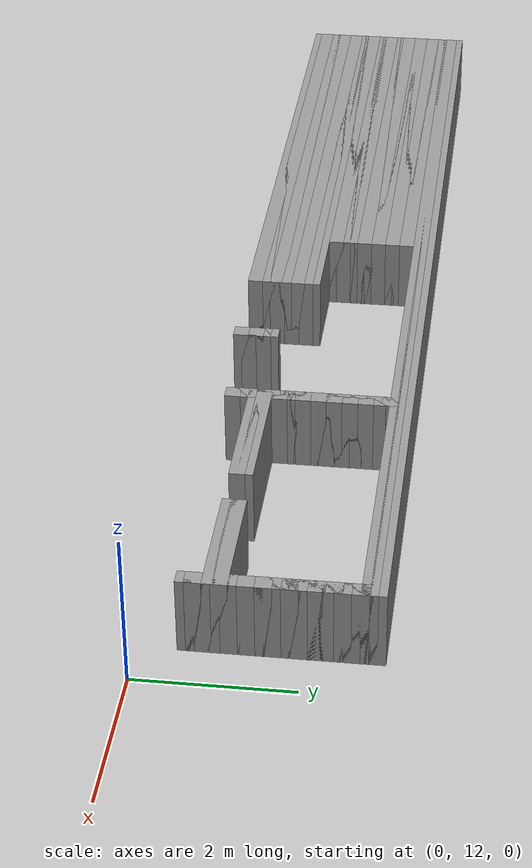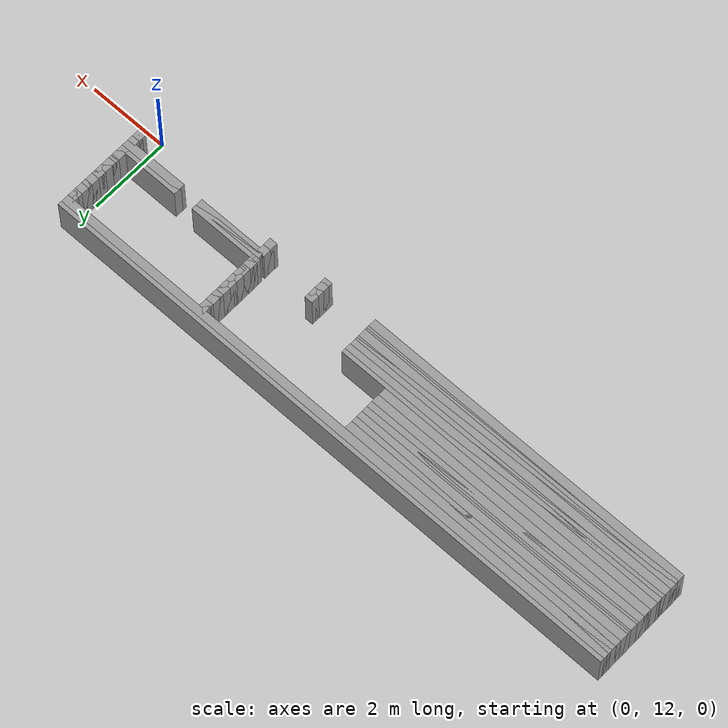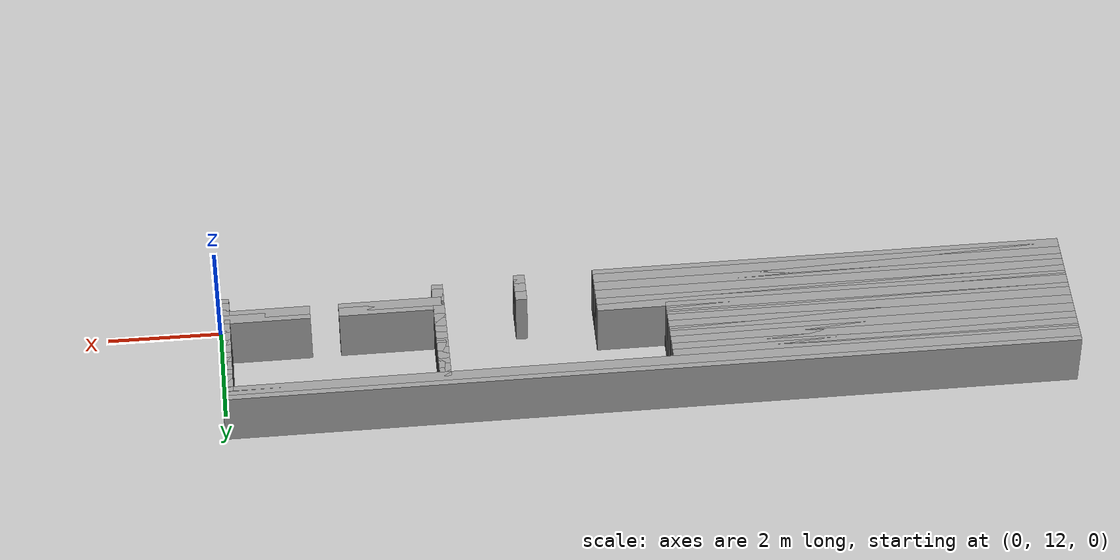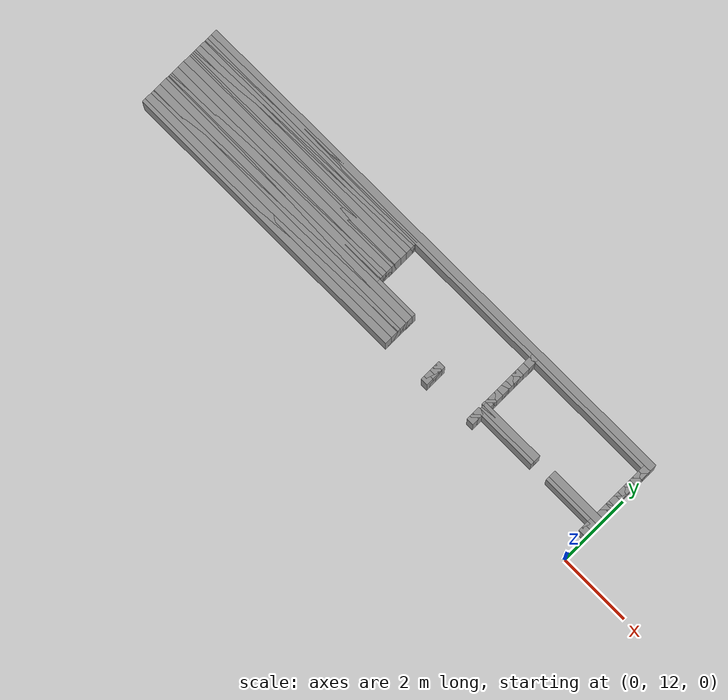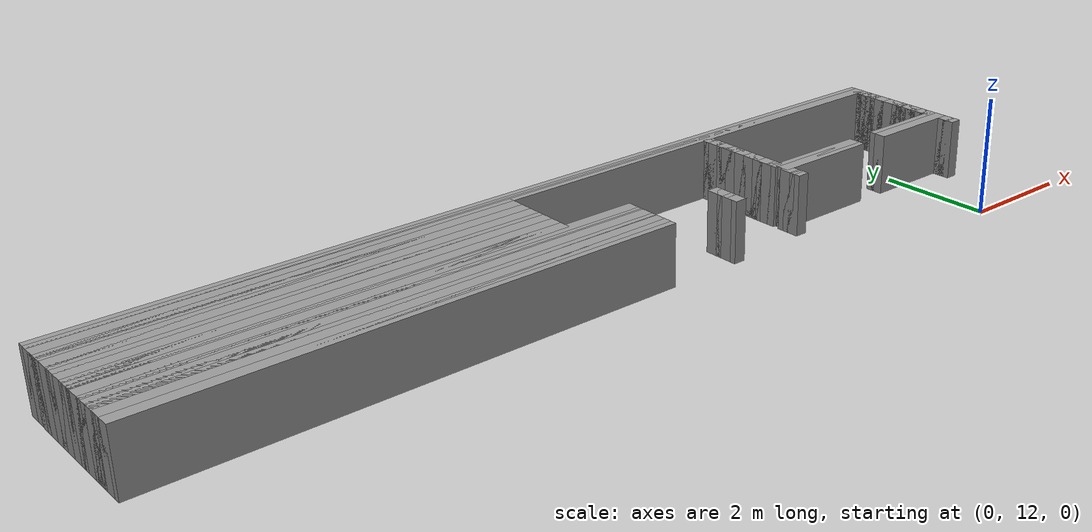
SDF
<sdf version="1.6">
 <world name="GridMap">
  <model name="GridMap">
   <link name="Wall_(53.0,126.0)">
    <collision name="Wall_(53.0,126.0)_Collision">
     <geometry><box><size>0.2 0.2 1.0</size></box></geometry>
     <pose>-5.300000000000001 12.600000000000001 0.5 0 -0 0</pose>
    </collision>
    <visual name="Wall_(53.0,126.0)_Visual">
     <geometry><box><size>0.2 0.2 1.0</size></box></geometry>
     <pose>-5.300000000000001 12.600000000000001 0.5 0 -0 0</pose>
     <material>
      <script><uri>file://media/materials/scripts/gazebo.material</uri><name>Gazebo/Grey</name></script>
      <ambient>1 1 1 1</ambient>
     </material>
     <meta><layer>0</layer></meta>
    </visual>
    <pose>0 0 0.5 0 -0 0</pose>
   </link>
   <link name="Wall_(107.5,126.0)">
    <collision name="Wall_(107.5,126.0)_Collision">
     <geometry><box><size>8.3 0.2 1.0</size></box></geometry>
     <pose>-10.75 12.600000000000001 0.5 0 -0 0</pose>
    </collision>
    <visual name="Wall_(107.5,126.0)_Visual">
     <geometry><box><size>8.3 0.2 1.0</size></box></geometry>
     <pose>-10.75 12.600000000000001 0.5 0 -0 0</pose>
     <material>
      <script><uri>file://media/materials/scripts/gazebo.material</uri><name>Gazebo/Grey</name></script>
      <ambient>1 1 1 1</ambient>
     </material>
     <meta><layer>0</layer></meta>
    </visual>
    <pose>0 0 0.5 0 -0 0</pose>
   </link>
   <link name="Wall_(1.0,127.0)">
    <collision name="Wall_(1.0,127.0)_Collision">
     <geometry><box><size>0.2 0.2 1.0</size></box></geometry>
     <pose>-0.1 12.700000000000001 0.5 0 -0 0</pose>
    </collision>
    <visual name="Wall_(1.0,127.0)_Visual">
     <geometry><box><size>0.2 0.2 1.0</size></box></geometry>
     <pose>-0.1 12.700000000000001 0.5 0 -0 0</pose>
     <material>
      <script><uri>file://media/materials/scripts/gazebo.material</uri><name>Gazebo/Grey</name></script>
      <ambient>1 1 1 1</ambient>
     </material>
     <meta><layer>0</layer></meta>
    </visual>
    <pose>0 0 0.5 0 -0 0</pose>
   </link>
   <link name="Wall_(38.5,127.0)">
    <collision name="Wall_(38.5,127.0)_Collision">
     <geometry><box><size>0.2 0.2 1.0</size></box></geometry>
     <pose>-3.85 12.700000000000001 0.5 0 -0 0</pose>
    </collision>
    <visual name="Wall_(38.5,127.0)_Visual">
     <geometry><box><size>0.2 0.2 1.0</size></box></geometry>
     <pose>-3.85 12.700000000000001 0.5 0 -0 0</pose>
     <material>
      <script><uri>file://media/materials/scripts/gazebo.material</uri><name>Gazebo/Grey</name></script>
      <ambient>1 1 1 1</ambient>
     </material>
     <meta><layer>0</layer></meta>
    </visual>
    <pose>0 0 0.5 0 -0 0</pose>
   </link>
   <link name="Wall_(53.0,127.0)">
    <collision name="Wall_(53.0,127.0)_Collision">
     <geometry><box><size>0.2 0.2 1.0</size></box></geometry>
     <pose>-5.300000000000001 12.700000000000001 0.5 0 -0 0</pose>
    </collision>
    <visual name="Wall_(53.0,127.0)_Visual">
     <geometry><box><size>0.2 0.2 1.0</size></box></geometry>
     <pose>-5.300000000000001 12.700000000000001 0.5 0 -0 0</pose>
     <material>
      <script><uri>file://media/materials/scripts/gazebo.material</uri><name>Gazebo/Grey</name></script>
      <ambient>1 1 1 1</ambient>
     </material>
     <meta><layer>0</layer></meta>
    </visual>
    <pose>0 0 0.5 0 -0 0</pose>
   </link>
   <link name="Wall_(107.5,127.0)">
    <collision name="Wall_(107.5,127.0)_Collision">
     <geometry><box><size>8.3 0.2 1.0</size></box></geometry>
     <pose>-10.75 12.700000000000001 0.5 0 -0 0</pose>
    </collision>
    <visual name="Wall_(107.5,127.0)_Visual">
     <geometry><box><size>8.3 0.2 1.0</size></box></geometry>
     <pose>-10.75 12.700000000000001 0.5 0 -0 0</pose>
     <material>
      <script><uri>file://media/materials/scripts/gazebo.material</uri><name>Gazebo/Grey</name></script>
      <ambient>1 1 1 1</ambient>
     </material>
     <meta><layer>0</layer></meta>
    </visual>
    <pose>0 0 0.5 0 -0 0</pose>
   </link>
   <link name="Wall_(1.0,128.0)">
    <collision name="Wall_(1.0,128.0)_Collision">
     <geometry><box><size>0.2 0.2 1.0</size></box></geometry>
     <pose>-0.1 12.8 0.5 0 -0 0</pose>
    </collision>
    <visual name="Wall_(1.0,128.0)_Visual">
     <geometry><box><size>0.2 0.2 1.0</size></box></geometry>
     <pose>-0.1 12.8 0.5 0 -0 0</pose>
     <material>
      <script><uri>file://media/materials/scripts/gazebo.material</uri><name>Gazebo/Grey</name></script>
      <ambient>1 1 1 1</ambient>
     </material>
     <meta><layer>0</layer></meta>
    </visual>
    <pose>0 0 0.5 0 -0 0</pose>
   </link>
   <link name="Wall_(38.5,128.0)">
    <collision name="Wall_(38.5,128.0)_Collision">
     <geometry><box><size>0.2 0.2 1.0</size></box></geometry>
     <pose>-3.85 12.8 0.5 0 -0 0</pose>
    </collision>
    <visual name="Wall_(38.5,128.0)_Visual">
     <geometry><box><size>0.2 0.2 1.0</size></box></geometry>
     <pose>-3.85 12.8 0.5 0 -0 0</pose>
     <material>
      <script><uri>file://media/materials/scripts/gazebo.material</uri><name>Gazebo/Grey</name></script>
      <ambient>1 1 1 1</ambient>
     </material>
     <meta><layer>0</layer></meta>
    </visual>
    <pose>0 0 0.5 0 -0 0</pose>
   </link>
   <link name="Wall_(53.0,128.0)">
    <collision name="Wall_(53.0,128.0)_Collision">
     <geometry><box><size>0.2 0.2 1.0</size></box></geometry>
     <pose>-5.300000000000001 12.8 0.5 0 -0 0</pose>
    </collision>
    <visual name="Wall_(53.0,128.0)_Visual">
     <geometry><box><size>0.2 0.2 1.0</size></box></geometry>
     <pose>-5.300000000000001 12.8 0.5 0 -0 0</pose>
     <material>
      <script><uri>file://media/materials/scripts/gazebo.material</uri><name>Gazebo/Grey</name></script>
      <ambient>1 1 1 1</ambient>
     </material>
     <meta><layer>0</layer></meta>
    </visual>
    <pose>0 0 0.5 0 -0 0</pose>
   </link>
   <link name="Wall_(107.5,128.0)">
    <collision name="Wall_(107.5,128.0)_Collision">
     <geometry><box><size>8.3 0.2 1.0</size></box></geometry>
     <pose>-10.75 12.8 0.5 0 -0 0</pose>
    </collision>
    <visual name="Wall_(107.5,128.0)_Visual">
     <geometry><box><size>8.3 0.2 1.0</size></box></geometry>
     <pose>-10.75 12.8 0.5 0 -0 0</pose>
     <material>
      <script><uri>file://media/materials/scripts/gazebo.material</uri><name>Gazebo/Grey</name></script>
      <ambient>1 1 1 1</ambient>
     </material>
     <meta><layer>0</layer></meta>
    </visual>
    <pose>0 0 0.5 0 -0 0</pose>
   </link>
   <link name="Wall_(1.0,129.0)">
    <collision name="Wall_(1.0,129.0)_Collision">
     <geometry><box><size>0.2 0.2 1.0</size></box></geometry>
     <pose>-0.1 12.9 0.5 0 -0 0</pose>
    </collision>
    <visual name="Wall_(1.0,129.0)_Visual">
     <geometry><box><size>0.2 0.2 1.0</size></box></geometry>
     <pose>-0.1 12.9 0.5 0 -0 0</pose>
     <material>
      <script><uri>file://media/materials/scripts/gazebo.material</uri><name>Gazebo/Grey</name></script>
      <ambient>1 1 1 1</ambient>
     </material>
     <meta><layer>0</layer></meta>
    </visual>
    <pose>0 0 0.5 0 -0 0</pose>
   </link>
   <link name="Wall_(38.5,129.0)">
    <collision name="Wall_(38.5,129.0)_Collision">
     <geometry><box><size>0.2 0.2 1.0</size></box></geometry>
     <pose>-3.85 12.9 0.5 0 -0 0</pose>
    </collision>
    <visual name="Wall_(38.5,129.0)_Visual">
     <geometry><box><size>0.2 0.2 1.0</size></box></geometry>
     <pose>-3.85 12.9 0.5 0 -0 0</pose>
     <material>
      <script><uri>file://media/materials/scripts/gazebo.material</uri><name>Gazebo/Grey</name></script>
      <ambient>1 1 1 1</ambient>
     </material>
     <meta><layer>0</layer></meta>
    </visual>
    <pose>0 0 0.5 0 -0 0</pose>
   </link>
   <link name="Wall_(53.0,129.0)">
    <collision name="Wall_(53.0,129.0)_Collision">
     <geometry><box><size>0.2 0.2 1.0</size></box></geometry>
     <pose>-5.300000000000001 12.9 0.5 0 -0 0</pose>
    </collision>
    <visual name="Wall_(53.0,129.0)_Visual">
     <geometry><box><size>0.2 0.2 1.0</size></box></geometry>
     <pose>-5.300000000000001 12.9 0.5 0 -0 0</pose>
     <material>
      <script><uri>file://media/materials/scripts/gazebo.material</uri><name>Gazebo/Grey</name></script>
      <ambient>1 1 1 1</ambient>
     </material>
     <meta><layer>0</layer></meta>
    </visual>
    <pose>0 0 0.5 0 -0 0</pose>
   </link>
   <link name="Wall_(107.5,129.0)">
    <collision name="Wall_(107.5,129.0)_Collision">
     <geometry><box><size>8.3 0.2 1.0</size></box></geometry>
     <pose>-10.75 12.9 0.5 0 -0 0</pose>
    </collision>
    <visual name="Wall_(107.5,129.0)_Visual">
     <geometry><box><size>8.3 0.2 1.0</size></box></geometry>
     <pose>-10.75 12.9 0.5 0 -0 0</pose>
     <material>
      <script><uri>file://media/materials/scripts/gazebo.material</uri><name>Gazebo/Grey</name></script>
      <ambient>1 1 1 1</ambient>
     </material>
     <meta><layer>0</layer></meta>
    </visual>
    <pose>0 0 0.5 0 -0 0</pose>
   </link>
   <link name="Wall_(8.0,130.0)">
    <collision name="Wall_(8.0,130.0)_Collision">
     <geometry><box><size>1.6 0.2 1.0</size></box></geometry>
     <pose>-0.8 13.0 0.5 0 -0 0</pose>
    </collision>
    <visual name="Wall_(8.0,130.0)_Visual">
     <geometry><box><size>1.6 0.2 1.0</size></box></geometry>
     <pose>-0.8 13.0 0.5 0 -0 0</pose>
     <material>
      <script><uri>file://media/materials/scripts/gazebo.material</uri><name>Gazebo/Grey</name></script>
      <ambient>1 1 1 1</ambient>
     </material>
     <meta><layer>0</layer></meta>
    </visual>
    <pose>0 0 0.5 0 -0 0</pose>
   </link>
   <link name="Wall_(30.0,130.0)">
    <collision name="Wall_(30.0,130.0)_Collision">
     <geometry><box><size>1.8 0.2 1.0</size></box></geometry>
     <pose>-3.0 13.0 0.5 0 -0 0</pose>
    </collision>
    <visual name="Wall_(30.0,130.0)_Visual">
     <geometry><box><size>1.8 0.2 1.0</size></box></geometry>
     <pose>-3.0 13.0 0.5 0 -0 0</pose>
     <material>
      <script><uri>file://media/materials/scripts/gazebo.material</uri><name>Gazebo/Grey</name></script>
      <ambient>1 1 1 1</ambient>
     </material>
     <meta><layer>0</layer></meta>
    </visual>
    <pose>0 0 0.5 0 -0 0</pose>
   </link>
   <link name="Wall_(53.0,130.0)">
    <collision name="Wall_(53.0,130.0)_Collision">
     <geometry><box><size>0.2 0.2 1.0</size></box></geometry>
     <pose>-5.300000000000001 13.0 0.5 0 -0 0</pose>
    </collision>
    <visual name="Wall_(53.0,130.0)_Visual">
     <geometry><box><size>0.2 0.2 1.0</size></box></geometry>
     <pose>-5.300000000000001 13.0 0.5 0 -0 0</pose>
     <material>
      <script><uri>file://media/materials/scripts/gazebo.material</uri><name>Gazebo/Grey</name></script>
      <ambient>1 1 1 1</ambient>
     </material>
     <meta><layer>0</layer></meta>
    </visual>
    <pose>0 0 0.5 0 -0 0</pose>
   </link>
   <link name="Wall_(107.5,130.0)">
    <collision name="Wall_(107.5,130.0)_Collision">
     <geometry><box><size>8.3 0.2 1.0</size></box></geometry>
     <pose>-10.75 13.0 0.5 0 -0 0</pose>
    </collision>
    <visual name="Wall_(107.5,130.0)_Visual">
     <geometry><box><size>8.3 0.2 1.0</size></box></geometry>
     <pose>-10.75 13.0 0.5 0 -0 0</pose>
     <material>
      <script><uri>file://media/materials/scripts/gazebo.material</uri><name>Gazebo/Grey</name></script>
      <ambient>1 1 1 1</ambient>
     </material>
     <meta><layer>0</layer></meta>
    </visual>
    <pose>0 0 0.5 0 -0 0</pose>
   </link>
   <link name="Wall_(8.0,131.0)">
    <collision name="Wall_(8.0,131.0)_Collision">
     <geometry><box><size>1.6 0.2 1.0</size></box></geometry>
     <pose>-0.8 13.100000000000001 0.5 0 -0 0</pose>
    </collision>
    <visual name="Wall_(8.0,131.0)_Visual">
     <geometry><box><size>1.6 0.2 1.0</size></box></geometry>
     <pose>-0.8 13.100000000000001 0.5 0 -0 0</pose>
     <material>
      <script><uri>file://media/materials/scripts/gazebo.material</uri><name>Gazebo/Grey</name></script>
      <ambient>1 1 1 1</ambient>
     </material>
     <meta><layer>0</layer></meta>
    </visual>
    <pose>0 0 0.5 0 -0 0</pose>
   </link>
   <link name="Wall_(30.0,131.0)">
    <collision name="Wall_(30.0,131.0)_Collision">
     <geometry><box><size>1.8 0.2 1.0</size></box></geometry>
     <pose>-3.0 13.100000000000001 0.5 0 -0 0</pose>
    </collision>
    <visual name="Wall_(30.0,131.0)_Visual">
     <geometry><box><size>1.8 0.2 1.0</size></box></geometry>
     <pose>-3.0 13.100000000000001 0.5 0 -0 0</pose>
     <material>
      <script><uri>file://media/materials/scripts/gazebo.material</uri><name>Gazebo/Grey</name></script>
      <ambient>1 1 1 1</ambient>
     </material>
     <meta><layer>0</layer></meta>
    </visual>
    <pose>0 0 0.5 0 -0 0</pose>
   </link>
   <link name="Wall_(107.5,131.0)">
    <collision name="Wall_(107.5,131.0)_Collision">
     <geometry><box><size>8.3 0.2 1.0</size></box></geometry>
     <pose>-10.75 13.100000000000001 0.5 0 -0 0</pose>
    </collision>
    <visual name="Wall_(107.5,131.0)_Visual">
     <geometry><box><size>8.3 0.2 1.0</size></box></geometry>
     <pose>-10.75 13.100000000000001 0.5 0 -0 0</pose>
     <material>
      <script><uri>file://media/materials/scripts/gazebo.material</uri><name>Gazebo/Grey</name></script>
      <ambient>1 1 1 1</ambient>
     </material>
     <meta><layer>0</layer></meta>
    </visual>
    <pose>0 0 0.5 0 -0 0</pose>
   </link>
   <link name="Wall_(1.0,132.0)">
    <collision name="Wall_(1.0,132.0)_Collision">
     <geometry><box><size>0.2 0.2 1.0</size></box></geometry>
     <pose>-0.1 13.200000000000001 0.5 0 -0 0</pose>
    </collision>
    <visual name="Wall_(1.0,132.0)_Visual">
     <geometry><box><size>0.2 0.2 1.0</size></box></geometry>
     <pose>-0.1 13.200000000000001 0.5 0 -0 0</pose>
     <material>
      <script><uri>file://media/materials/scripts/gazebo.material</uri><name>Gazebo/Grey</name></script>
      <ambient>1 1 1 1</ambient>
     </material>
     <meta><layer>0</layer></meta>
    </visual>
    <pose>0 0 0.5 0 -0 0</pose>
   </link>
   <link name="Wall_(38.5,132.0)">
    <collision name="Wall_(38.5,132.0)_Collision">
     <geometry><box><size>0.2 0.2 1.0</size></box></geometry>
     <pose>-3.85 13.200000000000001 0.5 0 -0 0</pose>
    </collision>
    <visual name="Wall_(38.5,132.0)_Visual">
     <geometry><box><size>0.2 0.2 1.0</size></box></geometry>
     <pose>-3.85 13.200000000000001 0.5 0 -0 0</pose>
     <material>
      <script><uri>file://media/materials/scripts/gazebo.material</uri><name>Gazebo/Grey</name></script>
      <ambient>1 1 1 1</ambient>
     </material>
     <meta><layer>0</layer></meta>
    </visual>
    <pose>0 0 0.5 0 -0 0</pose>
   </link>
   <link name="Wall_(107.5,132.0)">
    <collision name="Wall_(107.5,132.0)_Collision">
     <geometry><box><size>8.3 0.2 1.0</size></box></geometry>
     <pose>-10.75 13.200000000000001 0.5 0 -0 0</pose>
    </collision>
    <visual name="Wall_(107.5,132.0)_Visual">
     <geometry><box><size>8.3 0.2 1.0</size></box></geometry>
     <pose>-10.75 13.200000000000001 0.5 0 -0 0</pose>
     <material>
      <script><uri>file://media/materials/scripts/gazebo.material</uri><name>Gazebo/Grey</name></script>
      <ambient>1 1 1 1</ambient>
     </material>
     <meta><layer>0</layer></meta>
    </visual>
    <pose>0 0 0.5 0 -0 0</pose>
   </link>
   <link name="Wall_(1.0,133.0)">
    <collision name="Wall_(1.0,133.0)_Collision">
     <geometry><box><size>0.2 0.2 1.0</size></box></geometry>
     <pose>-0.1 13.3 0.5 0 -0 0</pose>
    </collision>
    <visual name="Wall_(1.0,133.0)_Visual">
     <geometry><box><size>0.2 0.2 1.0</size></box></geometry>
     <pose>-0.1 13.3 0.5 0 -0 0</pose>
     <material>
      <script><uri>file://media/materials/scripts/gazebo.material</uri><name>Gazebo/Grey</name></script>
      <ambient>1 1 1 1</ambient>
     </material>
     <meta><layer>0</layer></meta>
    </visual>
    <pose>0 0 0.5 0 -0 0</pose>
   </link>
   <link name="Wall_(38.5,133.0)">
    <collision name="Wall_(38.5,133.0)_Collision">
     <geometry><box><size>0.2 0.2 1.0</size></box></geometry>
     <pose>-3.85 13.3 0.5 0 -0 0</pose>
    </collision>
    <visual name="Wall_(38.5,133.0)_Visual">
     <geometry><box><size>0.2 0.2 1.0</size></box></geometry>
     <pose>-3.85 13.3 0.5 0 -0 0</pose>
     <material>
      <script><uri>file://media/materials/scripts/gazebo.material</uri><name>Gazebo/Grey</name></script>
      <ambient>1 1 1 1</ambient>
     </material>
     <meta><layer>0</layer></meta>
    </visual>
    <pose>0 0 0.5 0 -0 0</pose>
   </link>
   <link name="Wall_(107.5,133.0)">
    <collision name="Wall_(107.5,133.0)_Collision">
     <geometry><box><size>8.3 0.2 1.0</size></box></geometry>
     <pose>-10.75 13.3 0.5 0 -0 0</pose>
    </collision>
    <visual name="Wall_(107.5,133.0)_Visual">
     <geometry><box><size>8.3 0.2 1.0</size></box></geometry>
     <pose>-10.75 13.3 0.5 0 -0 0</pose>
     <material>
      <script><uri>file://media/materials/scripts/gazebo.material</uri><name>Gazebo/Grey</name></script>
      <ambient>1 1 1 1</ambient>
     </material>
     <meta><layer>0</layer></meta>
    </visual>
    <pose>0 0 0.5 0 -0 0</pose>
   </link>
   <link name="Wall_(1.0,134.0)">
    <collision name="Wall_(1.0,134.0)_Collision">
     <geometry><box><size>0.2 0.2 1.0</size></box></geometry>
     <pose>-0.1 13.4 0.5 0 -0 0</pose>
    </collision>
    <visual name="Wall_(1.0,134.0)_Visual">
     <geometry><box><size>0.2 0.2 1.0</size></box></geometry>
     <pose>-0.1 13.4 0.5 0 -0 0</pose>
     <material>
      <script><uri>file://media/materials/scripts/gazebo.material</uri><name>Gazebo/Grey</name></script>
      <ambient>1 1 1 1</ambient>
     </material>
     <meta><layer>0</layer></meta>
    </visual>
    <pose>0 0 0.5 0 -0 0</pose>
   </link>
   <link name="Wall_(38.5,134.0)">
    <collision name="Wall_(38.5,134.0)_Collision">
     <geometry><box><size>0.2 0.2 1.0</size></box></geometry>
     <pose>-3.85 13.4 0.5 0 -0 0</pose>
    </collision>
    <visual name="Wall_(38.5,134.0)_Visual">
     <geometry><box><size>0.2 0.2 1.0</size></box></geometry>
     <pose>-3.85 13.4 0.5 0 -0 0</pose>
     <material>
      <script><uri>file://media/materials/scripts/gazebo.material</uri><name>Gazebo/Grey</name></script>
      <ambient>1 1 1 1</ambient>
     </material>
     <meta><layer>0</layer></meta>
    </visual>
    <pose>0 0 0.5 0 -0 0</pose>
   </link>
   <link name="Wall_(107.5,134.0)">
    <collision name="Wall_(107.5,134.0)_Collision">
     <geometry><box><size>8.3 0.2 1.0</size></box></geometry>
     <pose>-10.75 13.4 0.5 0 -0 0</pose>
    </collision>
    <visual name="Wall_(107.5,134.0)_Visual">
     <geometry><box><size>8.3 0.2 1.0</size></box></geometry>
     <pose>-10.75 13.4 0.5 0 -0 0</pose>
     <material>
      <script><uri>file://media/materials/scripts/gazebo.material</uri><name>Gazebo/Grey</name></script>
      <ambient>1 1 1 1</ambient>
     </material>
     <meta><layer>0</layer></meta>
    </visual>
    <pose>0 0 0.5 0 -0 0</pose>
   </link>
   <link name="Wall_(1.0,135.0)">
    <collision name="Wall_(1.0,135.0)_Collision">
     <geometry><box><size>0.2 0.2 1.0</size></box></geometry>
     <pose>-0.1 13.5 0.5 0 -0 0</pose>
    </collision>
    <visual name="Wall_(1.0,135.0)_Visual">
     <geometry><box><size>0.2 0.2 1.0</size></box></geometry>
     <pose>-0.1 13.5 0.5 0 -0 0</pose>
     <material>
      <script><uri>file://media/materials/scripts/gazebo.material</uri><name>Gazebo/Grey</name></script>
      <ambient>1 1 1 1</ambient>
     </material>
     <meta><layer>0</layer></meta>
    </visual>
    <pose>0 0 0.5 0 -0 0</pose>
   </link>
   <link name="Wall_(38.5,135.0)">
    <collision name="Wall_(38.5,135.0)_Collision">
     <geometry><box><size>0.2 0.2 1.0</size></box></geometry>
     <pose>-3.85 13.5 0.5 0 -0 0</pose>
    </collision>
    <visual name="Wall_(38.5,135.0)_Visual">
     <geometry><box><size>0.2 0.2 1.0</size></box></geometry>
     <pose>-3.85 13.5 0.5 0 -0 0</pose>
     <material>
      <script><uri>file://media/materials/scripts/gazebo.material</uri><name>Gazebo/Grey</name></script>
      <ambient>1 1 1 1</ambient>
     </material>
     <meta><layer>0</layer></meta>
    </visual>
    <pose>0 0 0.5 0 -0 0</pose>
   </link>
   <link name="Wall_(113.5,135.0)">
    <collision name="Wall_(113.5,135.0)_Collision">
     <geometry><box><size>7.1000000000000005 0.2 1.0</size></box></geometry>
     <pose>-11.350000000000001 13.5 0.5 0 -0 0</pose>
    </collision>
    <visual name="Wall_(113.5,135.0)_Visual">
     <geometry><box><size>7.1000000000000005 0.2 1.0</size></box></geometry>
     <pose>-11.350000000000001 13.5 0.5 0 -0 0</pose>
     <material>
      <script><uri>file://media/materials/scripts/gazebo.material</uri><name>Gazebo/Grey</name></script>
      <ambient>1 1 1 1</ambient>
     </material>
     <meta><layer>0</layer></meta>
    </visual>
    <pose>0 0 0.5 0 -0 0</pose>
   </link>
   <link name="Wall_(1.0,136.0)">
    <collision name="Wall_(1.0,136.0)_Collision">
     <geometry><box><size>0.2 0.2 1.0</size></box></geometry>
     <pose>-0.1 13.600000000000001 0.5 0 -0 0</pose>
    </collision>
    <visual name="Wall_(1.0,136.0)_Visual">
     <geometry><box><size>0.2 0.2 1.0</size></box></geometry>
     <pose>-0.1 13.600000000000001 0.5 0 -0 0</pose>
     <material>
      <script><uri>file://media/materials/scripts/gazebo.material</uri><name>Gazebo/Grey</name></script>
      <ambient>1 1 1 1</ambient>
     </material>
     <meta><layer>0</layer></meta>
    </visual>
    <pose>0 0 0.5 0 -0 0</pose>
   </link>
   <link name="Wall_(38.5,136.0)">
    <collision name="Wall_(38.5,136.0)_Collision">
     <geometry><box><size>0.2 0.2 1.0</size></box></geometry>
     <pose>-3.85 13.600000000000001 0.5 0 -0 0</pose>
    </collision>
    <visual name="Wall_(38.5,136.0)_Visual">
     <geometry><box><size>0.2 0.2 1.0</size></box></geometry>
     <pose>-3.85 13.600000000000001 0.5 0 -0 0</pose>
     <material>
      <script><uri>file://media/materials/scripts/gazebo.material</uri><name>Gazebo/Grey</name></script>
      <ambient>1 1 1 1</ambient>
     </material>
     <meta><layer>0</layer></meta>
    </visual>
    <pose>0 0 0.5 0 -0 0</pose>
   </link>
   <link name="Wall_(113.5,136.0)">
    <collision name="Wall_(113.5,136.0)_Collision">
     <geometry><box><size>7.1000000000000005 0.2 1.0</size></box></geometry>
     <pose>-11.350000000000001 13.600000000000001 0.5 0 -0 0</pose>
    </collision>
    <visual name="Wall_(113.5,136.0)_Visual">
     <geometry><box><size>7.1000000000000005 0.2 1.0</size></box></geometry>
     <pose>-11.350000000000001 13.600000000000001 0.5 0 -0 0</pose>
     <material>
      <script><uri>file://media/materials/scripts/gazebo.material</uri><name>Gazebo/Grey</name></script>
      <ambient>1 1 1 1</ambient>
     </material>
     <meta><layer>0</layer></meta>
    </visual>
    <pose>0 0 0.5 0 -0 0</pose>
   </link>
   <link name="Wall_(1.0,137.0)">
    <collision name="Wall_(1.0,137.0)_Collision">
     <geometry><box><size>0.2 0.2 1.0</size></box></geometry>
     <pose>-0.1 13.700000000000001 0.5 0 -0 0</pose>
    </collision>
    <visual name="Wall_(1.0,137.0)_Visual">
     <geometry><box><size>0.2 0.2 1.0</size></box></geometry>
     <pose>-0.1 13.700000000000001 0.5 0 -0 0</pose>
     <material>
      <script><uri>file://media/materials/scripts/gazebo.material</uri><name>Gazebo/Grey</name></script>
      <ambient>1 1 1 1</ambient>
     </material>
     <meta><layer>0</layer></meta>
    </visual>
    <pose>0 0 0.5 0 -0 0</pose>
   </link>
   <link name="Wall_(38.5,137.0)">
    <collision name="Wall_(38.5,137.0)_Collision">
     <geometry><box><size>0.2 0.2 1.0</size></box></geometry>
     <pose>-3.85 13.700000000000001 0.5 0 -0 0</pose>
    </collision>
    <visual name="Wall_(38.5,137.0)_Visual">
     <geometry><box><size>0.2 0.2 1.0</size></box></geometry>
     <pose>-3.85 13.700000000000001 0.5 0 -0 0</pose>
     <material>
      <script><uri>file://media/materials/scripts/gazebo.material</uri><name>Gazebo/Grey</name></script>
      <ambient>1 1 1 1</ambient>
     </material>
     <meta><layer>0</layer></meta>
    </visual>
    <pose>0 0 0.5 0 -0 0</pose>
   </link>
   <link name="Wall_(113.5,137.0)">
    <collision name="Wall_(113.5,137.0)_Collision">
     <geometry><box><size>7.1000000000000005 0.2 1.0</size></box></geometry>
     <pose>-11.350000000000001 13.700000000000001 0.5 0 -0 0</pose>
    </collision>
    <visual name="Wall_(113.5,137.0)_Visual">
     <geometry><box><size>7.1000000000000005 0.2 1.0</size></box></geometry>
     <pose>-11.350000000000001 13.700000000000001 0.5 0 -0 0</pose>
     <material>
      <script><uri>file://media/materials/scripts/gazebo.material</uri><name>Gazebo/Grey</name></script>
      <ambient>1 1 1 1</ambient>
     </material>
     <meta><layer>0</layer></meta>
    </visual>
    <pose>0 0 0.5 0 -0 0</pose>
   </link>
   <link name="Wall_(1.0,138.0)">
    <collision name="Wall_(1.0,138.0)_Collision">
     <geometry><box><size>0.2 0.2 1.0</size></box></geometry>
     <pose>-0.1 13.8 0.5 0 -0 0</pose>
    </collision>
    <visual name="Wall_(1.0,138.0)_Visual">
     <geometry><box><size>0.2 0.2 1.0</size></box></geometry>
     <pose>-0.1 13.8 0.5 0 -0 0</pose>
     <material>
      <script><uri>file://media/materials/scripts/gazebo.material</uri><name>Gazebo/Grey</name></script>
      <ambient>1 1 1 1</ambient>
     </material>
     <meta><layer>0</layer></meta>
    </visual>
    <pose>0 0 0.5 0 -0 0</pose>
   </link>
   <link name="Wall_(38.5,138.0)">
    <collision name="Wall_(38.5,138.0)_Collision">
     <geometry><box><size>0.2 0.2 1.0</size></box></geometry>
     <pose>-3.85 13.8 0.5 0 -0 0</pose>
    </collision>
    <visual name="Wall_(38.5,138.0)_Visual">
     <geometry><box><size>0.2 0.2 1.0</size></box></geometry>
     <pose>-3.85 13.8 0.5 0 -0 0</pose>
     <material>
      <script><uri>file://media/materials/scripts/gazebo.material</uri><name>Gazebo/Grey</name></script>
      <ambient>1 1 1 1</ambient>
     </material>
     <meta><layer>0</layer></meta>
    </visual>
    <pose>0 0 0.5 0 -0 0</pose>
   </link>
   <link name="Wall_(113.5,138.0)">
    <collision name="Wall_(113.5,138.0)_Collision">
     <geometry><box><size>7.1000000000000005 0.2 1.0</size></box></geometry>
     <pose>-11.350000000000001 13.8 0.5 0 -0 0</pose>
    </collision>
    <visual name="Wall_(113.5,138.0)_Visual">
     <geometry><box><size>7.1000000000000005 0.2 1.0</size></box></geometry>
     <pose>-11.350000000000001 13.8 0.5 0 -0 0</pose>
     <material>
      <script><uri>file://media/materials/scripts/gazebo.material</uri><name>Gazebo/Grey</name></script>
      <ambient>1 1 1 1</ambient>
     </material>
     <meta><layer>0</layer></meta>
    </visual>
    <pose>0 0 0.5 0 -0 0</pose>
   </link>
   <link name="Wall_(1.0,139.0)">
    <collision name="Wall_(1.0,139.0)_Collision">
     <geometry><box><size>0.2 0.2 1.0</size></box></geometry>
     <pose>-0.1 13.9 0.5 0 -0 0</pose>
    </collision>
    <visual name="Wall_(1.0,139.0)_Visual">
     <geometry><box><size>0.2 0.2 1.0</size></box></geometry>
     <pose>-0.1 13.9 0.5 0 -0 0</pose>
     <material>
      <script><uri>file://media/materials/scripts/gazebo.material</uri><name>Gazebo/Grey</name></script>
      <ambient>1 1 1 1</ambient>
     </material>
     <meta><layer>0</layer></meta>
    </visual>
    <pose>0 0 0.5 0 -0 0</pose>
   </link>
   <link name="Wall_(38.5,139.0)">
    <collision name="Wall_(38.5,139.0)_Collision">
     <geometry><box><size>0.2 0.2 1.0</size></box></geometry>
     <pose>-3.85 13.9 0.5 0 -0 0</pose>
    </collision>
    <visual name="Wall_(38.5,139.0)_Visual">
     <geometry><box><size>0.2 0.2 1.0</size></box></geometry>
     <pose>-3.85 13.9 0.5 0 -0 0</pose>
     <material>
      <script><uri>file://media/materials/scripts/gazebo.material</uri><name>Gazebo/Grey</name></script>
      <ambient>1 1 1 1</ambient>
     </material>
     <meta><layer>0</layer></meta>
    </visual>
    <pose>0 0 0.5 0 -0 0</pose>
   </link>
   <link name="Wall_(113.5,139.0)">
    <collision name="Wall_(113.5,139.0)_Collision">
     <geometry><box><size>7.1000000000000005 0.2 1.0</size></box></geometry>
     <pose>-11.350000000000001 13.9 0.5 0 -0 0</pose>
    </collision>
    <visual name="Wall_(113.5,139.0)_Visual">
     <geometry><box><size>7.1000000000000005 0.2 1.0</size></box></geometry>
     <pose>-11.350000000000001 13.9 0.5 0 -0 0</pose>
     <material>
      <script><uri>file://media/materials/scripts/gazebo.material</uri><name>Gazebo/Grey</name></script>
      <ambient>1 1 1 1</ambient>
     </material>
     <meta><layer>0</layer></meta>
    </visual>
    <pose>0 0 0.5 0 -0 0</pose>
   </link>
   <link name="Wall_(1.0,140.0)">
    <collision name="Wall_(1.0,140.0)_Collision">
     <geometry><box><size>0.2 0.2 1.0</size></box></geometry>
     <pose>-0.1 14.0 0.5 0 -0 0</pose>
    </collision>
    <visual name="Wall_(1.0,140.0)_Visual">
     <geometry><box><size>0.2 0.2 1.0</size></box></geometry>
     <pose>-0.1 14.0 0.5 0 -0 0</pose>
     <material>
      <script><uri>file://media/materials/scripts/gazebo.material</uri><name>Gazebo/Grey</name></script>
      <ambient>1 1 1 1</ambient>
     </material>
     <meta><layer>0</layer></meta>
    </visual>
    <pose>0 0 0.5 0 -0 0</pose>
   </link>
   <link name="Wall_(38.5,140.0)">
    <collision name="Wall_(38.5,140.0)_Collision">
     <geometry><box><size>0.2 0.2 1.0</size></box></geometry>
     <pose>-3.85 14.0 0.5 0 -0 0</pose>
    </collision>
    <visual name="Wall_(38.5,140.0)_Visual">
     <geometry><box><size>0.2 0.2 1.0</size></box></geometry>
     <pose>-3.85 14.0 0.5 0 -0 0</pose>
     <material>
      <script><uri>file://media/materials/scripts/gazebo.material</uri><name>Gazebo/Grey</name></script>
      <ambient>1 1 1 1</ambient>
     </material>
     <meta><layer>0</layer></meta>
    </visual>
    <pose>0 0 0.5 0 -0 0</pose>
   </link>
   <link name="Wall_(113.5,140.0)">
    <collision name="Wall_(113.5,140.0)_Collision">
     <geometry><box><size>7.1000000000000005 0.2 1.0</size></box></geometry>
     <pose>-11.350000000000001 14.0 0.5 0 -0 0</pose>
    </collision>
    <visual name="Wall_(113.5,140.0)_Visual">
     <geometry><box><size>7.1000000000000005 0.2 1.0</size></box></geometry>
     <pose>-11.350000000000001 14.0 0.5 0 -0 0</pose>
     <material>
      <script><uri>file://media/materials/scripts/gazebo.material</uri><name>Gazebo/Grey</name></script>
      <ambient>1 1 1 1</ambient>
     </material>
     <meta><layer>0</layer></meta>
    </visual>
    <pose>0 0 0.5 0 -0 0</pose>
   </link>
   <link name="Wall_(1.0,141.0)">
    <collision name="Wall_(1.0,141.0)_Collision">
     <geometry><box><size>0.2 0.2 1.0</size></box></geometry>
     <pose>-0.1 14.100000000000001 0.5 0 -0 0</pose>
    </collision>
    <visual name="Wall_(1.0,141.0)_Visual">
     <geometry><box><size>0.2 0.2 1.0</size></box></geometry>
     <pose>-0.1 14.100000000000001 0.5 0 -0 0</pose>
     <material>
      <script><uri>file://media/materials/scripts/gazebo.material</uri><name>Gazebo/Grey</name></script>
      <ambient>1 1 1 1</ambient>
     </material>
     <meta><layer>0</layer></meta>
    </visual>
    <pose>0 0 0.5 0 -0 0</pose>
   </link>
   <link name="Wall_(38.5,141.0)">
    <collision name="Wall_(38.5,141.0)_Collision">
     <geometry><box><size>0.2 0.2 1.0</size></box></geometry>
     <pose>-3.85 14.100000000000001 0.5 0 -0 0</pose>
    </collision>
    <visual name="Wall_(38.5,141.0)_Visual">
     <geometry><box><size>0.2 0.2 1.0</size></box></geometry>
     <pose>-3.85 14.100000000000001 0.5 0 -0 0</pose>
     <material>
      <script><uri>file://media/materials/scripts/gazebo.material</uri><name>Gazebo/Grey</name></script>
      <ambient>1 1 1 1</ambient>
     </material>
     <meta><layer>0</layer></meta>
    </visual>
    <pose>0 0 0.5 0 -0 0</pose>
   </link>
   <link name="Wall_(113.5,141.0)">
    <collision name="Wall_(113.5,141.0)_Collision">
     <geometry><box><size>7.1000000000000005 0.2 1.0</size></box></geometry>
     <pose>-11.350000000000001 14.100000000000001 0.5 0 -0 0</pose>
    </collision>
    <visual name="Wall_(113.5,141.0)_Visual">
     <geometry><box><size>7.1000000000000005 0.2 1.0</size></box></geometry>
     <pose>-11.350000000000001 14.100000000000001 0.5 0 -0 0</pose>
     <material>
      <script><uri>file://media/materials/scripts/gazebo.material</uri><name>Gazebo/Grey</name></script>
      <ambient>1 1 1 1</ambient>
     </material>
     <meta><layer>0</layer></meta>
    </visual>
    <pose>0 0 0.5 0 -0 0</pose>
   </link>
   <link name="Wall_(1.0,142.0)">
    <collision name="Wall_(1.0,142.0)_Collision">
     <geometry><box><size>0.2 0.2 1.0</size></box></geometry>
     <pose>-0.1 14.200000000000001 0.5 0 -0 0</pose>
    </collision>
    <visual name="Wall_(1.0,142.0)_Visual">
     <geometry><box><size>0.2 0.2 1.0</size></box></geometry>
     <pose>-0.1 14.200000000000001 0.5 0 -0 0</pose>
     <material>
      <script><uri>file://media/materials/scripts/gazebo.material</uri><name>Gazebo/Grey</name></script>
      <ambient>1 1 1 1</ambient>
     </material>
     <meta><layer>0</layer></meta>
    </visual>
    <pose>0 0 0.5 0 -0 0</pose>
   </link>
   <link name="Wall_(38.5,142.0)">
    <collision name="Wall_(38.5,142.0)_Collision">
     <geometry><box><size>0.2 0.2 1.0</size></box></geometry>
     <pose>-3.85 14.200000000000001 0.5 0 -0 0</pose>
    </collision>
    <visual name="Wall_(38.5,142.0)_Visual">
     <geometry><box><size>0.2 0.2 1.0</size></box></geometry>
     <pose>-3.85 14.200000000000001 0.5 0 -0 0</pose>
     <material>
      <script><uri>file://media/materials/scripts/gazebo.material</uri><name>Gazebo/Grey</name></script>
      <ambient>1 1 1 1</ambient>
     </material>
     <meta><layer>0</layer></meta>
    </visual>
    <pose>0 0 0.5 0 -0 0</pose>
   </link>
   <link name="Wall_(113.5,142.0)">
    <collision name="Wall_(113.5,142.0)_Collision">
     <geometry><box><size>7.1000000000000005 0.2 1.0</size></box></geometry>
     <pose>-11.350000000000001 14.200000000000001 0.5 0 -0 0</pose>
    </collision>
    <visual name="Wall_(113.5,142.0)_Visual">
     <geometry><box><size>7.1000000000000005 0.2 1.0</size></box></geometry>
     <pose>-11.350000000000001 14.200000000000001 0.5 0 -0 0</pose>
     <material>
      <script><uri>file://media/materials/scripts/gazebo.material</uri><name>Gazebo/Grey</name></script>
      <ambient>1 1 1 1</ambient>
     </material>
     <meta><layer>0</layer></meta>
    </visual>
    <pose>0 0 0.5 0 -0 0</pose>
   </link>
   <link name="Wall_(1.0,143.0)">
    <collision name="Wall_(1.0,143.0)_Collision">
     <geometry><box><size>0.2 0.2 1.0</size></box></geometry>
     <pose>-0.1 14.3 0.5 0 -0 0</pose>
    </collision>
    <visual name="Wall_(1.0,143.0)_Visual">
     <geometry><box><size>0.2 0.2 1.0</size></box></geometry>
     <pose>-0.1 14.3 0.5 0 -0 0</pose>
     <material>
      <script><uri>file://media/materials/scripts/gazebo.material</uri><name>Gazebo/Grey</name></script>
      <ambient>1 1 1 1</ambient>
     </material>
     <meta><layer>0</layer></meta>
    </visual>
    <pose>0 0 0.5 0 -0 0</pose>
   </link>
   <link name="Wall_(38.5,143.0)">
    <collision name="Wall_(38.5,143.0)_Collision">
     <geometry><box><size>0.2 0.2 1.0</size></box></geometry>
     <pose>-3.85 14.3 0.5 0 -0 0</pose>
    </collision>
    <visual name="Wall_(38.5,143.0)_Visual">
     <geometry><box><size>0.2 0.2 1.0</size></box></geometry>
     <pose>-3.85 14.3 0.5 0 -0 0</pose>
     <material>
      <script><uri>file://media/materials/scripts/gazebo.material</uri><name>Gazebo/Grey</name></script>
      <ambient>1 1 1 1</ambient>
     </material>
     <meta><layer>0</layer></meta>
    </visual>
    <pose>0 0 0.5 0 -0 0</pose>
   </link>
   <link name="Wall_(113.5,143.0)">
    <collision name="Wall_(113.5,143.0)_Collision">
     <geometry><box><size>7.1000000000000005 0.2 1.0</size></box></geometry>
     <pose>-11.350000000000001 14.3 0.5 0 -0 0</pose>
    </collision>
    <visual name="Wall_(113.5,143.0)_Visual">
     <geometry><box><size>7.1000000000000005 0.2 1.0</size></box></geometry>
     <pose>-11.350000000000001 14.3 0.5 0 -0 0</pose>
     <material>
      <script><uri>file://media/materials/scripts/gazebo.material</uri><name>Gazebo/Grey</name></script>
      <ambient>1 1 1 1</ambient>
     </material>
     <meta><layer>0</layer></meta>
    </visual>
    <pose>0 0 0.5 0 -0 0</pose>
   </link>
   <link name="Wall_(1.0,144.0)">
    <collision name="Wall_(1.0,144.0)_Collision">
     <geometry><box><size>0.2 0.2 1.0</size></box></geometry>
     <pose>-0.1 14.4 0.5 0 -0 0</pose>
    </collision>
    <visual name="Wall_(1.0,144.0)_Visual">
     <geometry><box><size>0.2 0.2 1.0</size></box></geometry>
     <pose>-0.1 14.4 0.5 0 -0 0</pose>
     <material>
      <script><uri>file://media/materials/scripts/gazebo.material</uri><name>Gazebo/Grey</name></script>
      <ambient>1 1 1 1</ambient>
     </material>
     <meta><layer>0</layer></meta>
    </visual>
    <pose>0 0 0.5 0 -0 0</pose>
   </link>
   <link name="Wall_(38.5,144.0)">
    <collision name="Wall_(38.5,144.0)_Collision">
     <geometry><box><size>0.2 0.2 1.0</size></box></geometry>
     <pose>-3.85 14.4 0.5 0 -0 0</pose>
    </collision>
    <visual name="Wall_(38.5,144.0)_Visual">
     <geometry><box><size>0.2 0.2 1.0</size></box></geometry>
     <pose>-3.85 14.4 0.5 0 -0 0</pose>
     <material>
      <script><uri>file://media/materials/scripts/gazebo.material</uri><name>Gazebo/Grey</name></script>
      <ambient>1 1 1 1</ambient>
     </material>
     <meta><layer>0</layer></meta>
    </visual>
    <pose>0 0 0.5 0 -0 0</pose>
   </link>
   <link name="Wall_(113.5,144.0)">
    <collision name="Wall_(113.5,144.0)_Collision">
     <geometry><box><size>7.1000000000000005 0.2 1.0</size></box></geometry>
     <pose>-11.350000000000001 14.4 0.5 0 -0 0</pose>
    </collision>
    <visual name="Wall_(113.5,144.0)_Visual">
     <geometry><box><size>7.1000000000000005 0.2 1.0</size></box></geometry>
     <pose>-11.350000000000001 14.4 0.5 0 -0 0</pose>
     <material>
      <script><uri>file://media/materials/scripts/gazebo.material</uri><name>Gazebo/Grey</name></script>
      <ambient>1 1 1 1</ambient>
     </material>
     <meta><layer>0</layer></meta>
    </visual>
    <pose>0 0 0.5 0 -0 0</pose>
   </link>
   <link name="Wall_(1.0,145.0)">
    <collision name="Wall_(1.0,145.0)_Collision">
     <geometry><box><size>0.2 0.2 1.0</size></box></geometry>
     <pose>-0.1 14.5 0.5 0 -0 0</pose>
    </collision>
    <visual name="Wall_(1.0,145.0)_Visual">
     <geometry><box><size>0.2 0.2 1.0</size></box></geometry>
     <pose>-0.1 14.5 0.5 0 -0 0</pose>
     <material>
      <script><uri>file://media/materials/scripts/gazebo.material</uri><name>Gazebo/Grey</name></script>
      <ambient>1 1 1 1</ambient>
     </material>
     <meta><layer>0</layer></meta>
    </visual>
    <pose>0 0 0.5 0 -0 0</pose>
   </link>
   <link name="Wall_(38.5,145.0)">
    <collision name="Wall_(38.5,145.0)_Collision">
     <geometry><box><size>0.2 0.2 1.0</size></box></geometry>
     <pose>-3.85 14.5 0.5 0 -0 0</pose>
    </collision>
    <visual name="Wall_(38.5,145.0)_Visual">
     <geometry><box><size>0.2 0.2 1.0</size></box></geometry>
     <pose>-3.85 14.5 0.5 0 -0 0</pose>
     <material>
      <script><uri>file://media/materials/scripts/gazebo.material</uri><name>Gazebo/Grey</name></script>
      <ambient>1 1 1 1</ambient>
     </material>
     <meta><layer>0</layer></meta>
    </visual>
    <pose>0 0 0.5 0 -0 0</pose>
   </link>
   <link name="Wall_(113.5,145.0)">
    <collision name="Wall_(113.5,145.0)_Collision">
     <geometry><box><size>7.1000000000000005 0.2 1.0</size></box></geometry>
     <pose>-11.350000000000001 14.5 0.5 0 -0 0</pose>
    </collision>
    <visual name="Wall_(113.5,145.0)_Visual">
     <geometry><box><size>7.1000000000000005 0.2 1.0</size></box></geometry>
     <pose>-11.350000000000001 14.5 0.5 0 -0 0</pose>
     <material>
      <script><uri>file://media/materials/scripts/gazebo.material</uri><name>Gazebo/Grey</name></script>
      <ambient>1 1 1 1</ambient>
     </material>
     <meta><layer>0</layer></meta>
    </visual>
    <pose>0 0 0.5 0 -0 0</pose>
   </link>
   <link name="Wall_(1.0,146.0)">
    <collision name="Wall_(1.0,146.0)_Collision">
     <geometry><box><size>0.2 0.2 1.0</size></box></geometry>
     <pose>-0.1 14.600000000000001 0.5 0 -0 0</pose>
    </collision>
    <visual name="Wall_(1.0,146.0)_Visual">
     <geometry><box><size>0.2 0.2 1.0</size></box></geometry>
     <pose>-0.1 14.600000000000001 0.5 0 -0 0</pose>
     <material>
      <script><uri>file://media/materials/scripts/gazebo.material</uri><name>Gazebo/Grey</name></script>
      <ambient>1 1 1 1</ambient>
     </material>
     <meta><layer>0</layer></meta>
    </visual>
    <pose>0 0 0.5 0 -0 0</pose>
   </link>
   <link name="Wall_(38.5,146.0)">
    <collision name="Wall_(38.5,146.0)_Collision">
     <geometry><box><size>0.2 0.2 1.0</size></box></geometry>
     <pose>-3.85 14.600000000000001 0.5 0 -0 0</pose>
    </collision>
    <visual name="Wall_(38.5,146.0)_Visual">
     <geometry><box><size>0.2 0.2 1.0</size></box></geometry>
     <pose>-3.85 14.600000000000001 0.5 0 -0 0</pose>
     <material>
      <script><uri>file://media/materials/scripts/gazebo.material</uri><name>Gazebo/Grey</name></script>
      <ambient>1 1 1 1</ambient>
     </material>
     <meta><layer>0</layer></meta>
    </visual>
    <pose>0 0 0.5 0 -0 0</pose>
   </link>
   <link name="Wall_(113.5,146.0)">
    <collision name="Wall_(113.5,146.0)_Collision">
     <geometry><box><size>7.1000000000000005 0.2 1.0</size></box></geometry>
     <pose>-11.350000000000001 14.600000000000001 0.5 0 -0 0</pose>
    </collision>
    <visual name="Wall_(113.5,146.0)_Visual">
     <geometry><box><size>7.1000000000000005 0.2 1.0</size></box></geometry>
     <pose>-11.350000000000001 14.600000000000001 0.5 0 -0 0</pose>
     <material>
      <script><uri>file://media/materials/scripts/gazebo.material</uri><name>Gazebo/Grey</name></script>
      <ambient>1 1 1 1</ambient>
     </material>
     <meta><layer>0</layer></meta>
    </visual>
    <pose>0 0 0.5 0 -0 0</pose>
   </link>
   <link name="Wall_(1.0,147.0)">
    <collision name="Wall_(1.0,147.0)_Collision">
     <geometry><box><size>0.2 0.2 1.0</size></box></geometry>
     <pose>-0.1 14.700000000000001 0.5 0 -0 0</pose>
    </collision>
    <visual name="Wall_(1.0,147.0)_Visual">
     <geometry><box><size>0.2 0.2 1.0</size></box></geometry>
     <pose>-0.1 14.700000000000001 0.5 0 -0 0</pose>
     <material>
      <script><uri>file://media/materials/scripts/gazebo.material</uri><name>Gazebo/Grey</name></script>
      <ambient>1 1 1 1</ambient>
     </material>
     <meta><layer>0</layer></meta>
    </visual>
    <pose>0 0 0.5 0 -0 0</pose>
   </link>
   <link name="Wall_(38.5,147.0)">
    <collision name="Wall_(38.5,147.0)_Collision">
     <geometry><box><size>0.2 0.2 1.0</size></box></geometry>
     <pose>-3.85 14.700000000000001 0.5 0 -0 0</pose>
    </collision>
    <visual name="Wall_(38.5,147.0)_Visual">
     <geometry><box><size>0.2 0.2 1.0</size></box></geometry>
     <pose>-3.85 14.700000000000001 0.5 0 -0 0</pose>
     <material>
      <script><uri>file://media/materials/scripts/gazebo.material</uri><name>Gazebo/Grey</name></script>
      <ambient>1 1 1 1</ambient>
     </material>
     <meta><layer>0</layer></meta>
    </visual>
    <pose>0 0 0.5 0 -0 0</pose>
   </link>
   <link name="Wall_(113.5,147.0)">
    <collision name="Wall_(113.5,147.0)_Collision">
     <geometry><box><size>7.1000000000000005 0.2 1.0</size></box></geometry>
     <pose>-11.350000000000001 14.700000000000001 0.5 0 -0 0</pose>
    </collision>
    <visual name="Wall_(113.5,147.0)_Visual">
     <geometry><box><size>7.1000000000000005 0.2 1.0</size></box></geometry>
     <pose>-11.350000000000001 14.700000000000001 0.5 0 -0 0</pose>
     <material>
      <script><uri>file://media/materials/scripts/gazebo.material</uri><name>Gazebo/Grey</name></script>
      <ambient>1 1 1 1</ambient>
     </material>
     <meta><layer>0</layer></meta>
    </visual>
    <pose>0 0 0.5 0 -0 0</pose>
   </link>
   <link name="Wall_(74.5,148.0)">
    <collision name="Wall_(74.5,148.0)_Collision">
     <geometry><box><size>14.9 0.2 1.0</size></box></geometry>
     <pose>-7.45 14.8 0.5 0 -0 0</pose>
    </collision>
    <visual name="Wall_(74.5,148.0)_Visual">
     <geometry><box><size>14.9 0.2 1.0</size></box></geometry>
     <pose>-7.45 14.8 0.5 0 -0 0</pose>
     <material>
      <script><uri>file://media/materials/scripts/gazebo.material</uri><name>Gazebo/Grey</name></script>
      <ambient>1 1 1 1</ambient>
     </material>
     <meta><layer>0</layer></meta>
    </visual>
    <pose>0 0 0.5 0 -0 0</pose>
   </link>
   <link name="Wall_(74.5,149.0)">
    <collision name="Wall_(74.5,149.0)_Collision">
     <geometry><box><size>14.9 0.2 1.0</size></box></geometry>
     <pose>-7.45 14.9 0.5 0 -0 0</pose>
    </collision>
    <visual name="Wall_(74.5,149.0)_Visual">
     <geometry><box><size>14.9 0.2 1.0</size></box></geometry>
     <pose>-7.45 14.9 0.5 0 -0 0</pose>
     <material>
      <script><uri>file://media/materials/scripts/gazebo.material</uri><name>Gazebo/Grey</name></script>
      <ambient>1 1 1 1</ambient>
     </material>
     <meta><layer>0</layer></meta>
    </visual>
    <pose>0 0 0.5 0 -0 0</pose>
   </link>
   <static>1</static>
  </model>
 </world>
</sdf>
